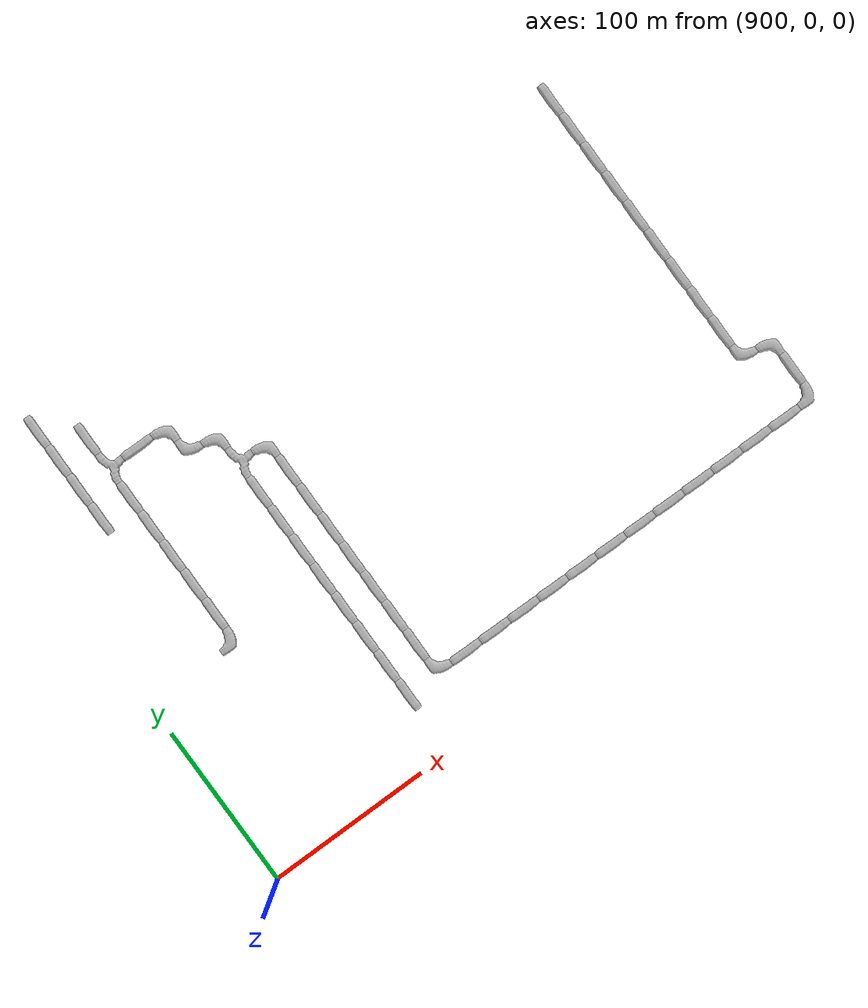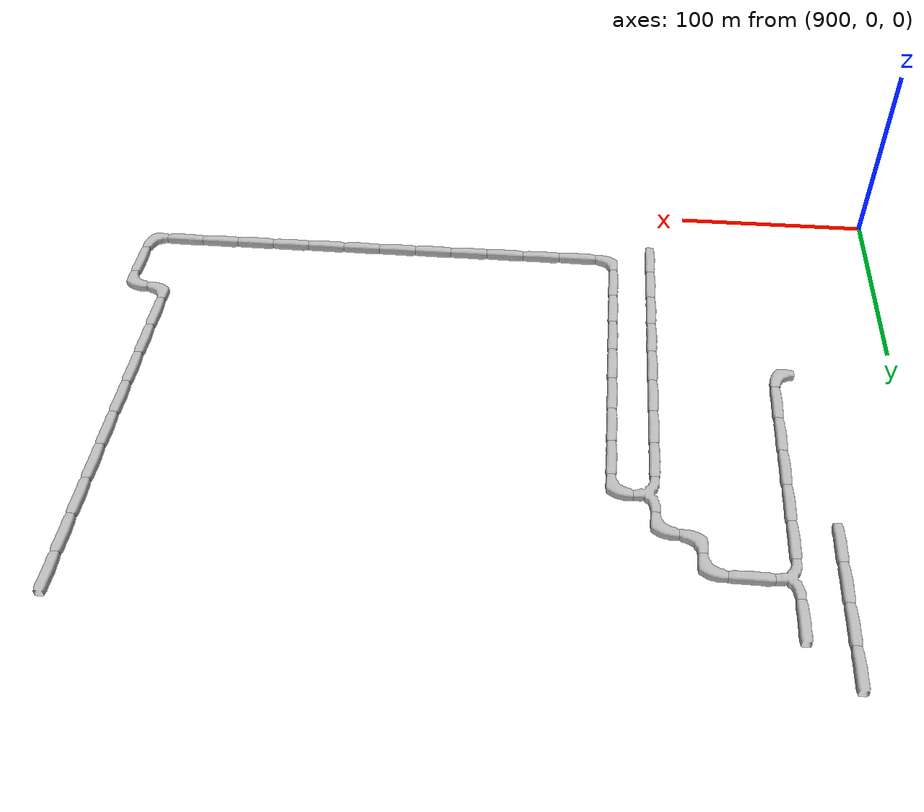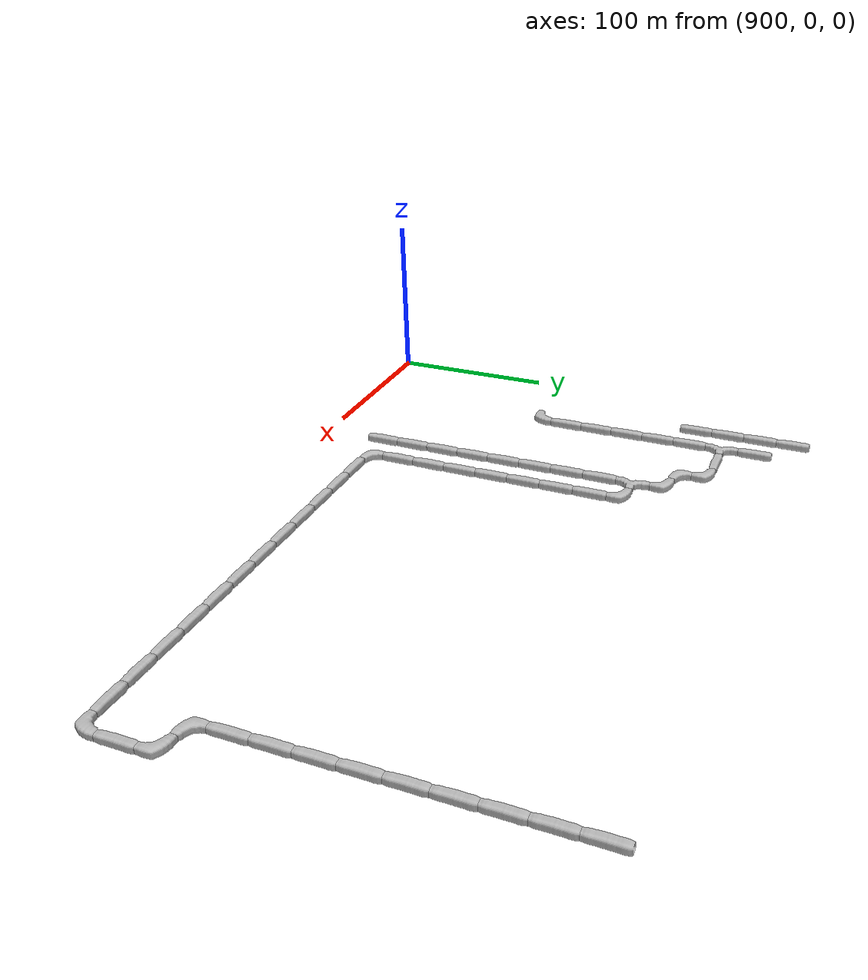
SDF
<sdf version="1.6">
 <world name="cave_32000_2">
  <include>
   <static>true</static>
   <name>cave_48_6</name>
   <pose>960 120 0 0 0 1.5707963267948966</pose>
   <uri>model://cave_L_20m</uri>
  </include>
  <include>
   <static>true</static>
   <name>cave_48_7</name>
   <pose>960 140 0 0 0 0.0</pose>
   <uri>model://cave_straight_20m</uri>
  </include>
  <include>
   <static>true</static>
   <name>cave_48_8</name>
   <pose>960 160 0 0 0 0.0</pose>
   <uri>model://cave_straight_20m</uri>
  </include>
  <include>
   <static>true</static>
   <name>cave_48_9</name>
   <pose>960 180 0 0 0 0.0</pose>
   <uri>model://cave_straight_20m</uri>
  </include>
  <include>
   <static>true</static>
   <name>cave_48_10</name>
   <pose>960 200 0 0 0 0.0</pose>
   <uri>model://cave_straight_20m</uri>
  </include>
  <include>
   <static>true</static>
   <name>cave_48_11</name>
   <pose>960 220 0 0 0 0.0</pose>
   <uri>model://cave_straight_20m</uri>
  </include>
  <include>
   <static>true</static>
   <name>cave_48_12</name>
   <pose>960 240 0 0 0 -1.5707963267948966</pose>
   <uri>model://cave_3way_20m</uri>
  </include>
  <include>
   <static>true</static>
   <name>cave_49_12</name>
   <pose>980 240 0 0 0 1.5707963267948966</pose>
   <uri>model://cave_straight_20m</uri>
  </include>
  <include>
   <static>true</static>
   <name>cave_50_12</name>
   <pose>1000 240 0 0 0 3.141592653589793</pose>
   <uri>model://cave_L_20m</uri>
  </include>
  <include>
   <static>true</static>
   <name>cave_50_11</name>
   <pose>1000 220 0 0 0 0.0</pose>
   <uri>model://cave_L_20m</uri>
  </include>
  <include>
   <static>true</static>
   <name>cave_51_11</name>
   <pose>1020 220 0 0 0 3.141592653589793</pose>
   <uri>model://cave_L_20m</uri>
  </include>
  <include>
   <static>true</static>
   <name>cave_51_10</name>
   <pose>1020 200 0 0 0 -1.5707963267948966</pose>
   <uri>model://cave_3way_20m</uri>
  </include>
  <include>
   <static>true</static>
   <name>cave_52_10</name>
   <pose>1040 200 0 0 0 3.141592653589793</pose>
   <uri>model://cave_L_20m</uri>
  </include>
  <include>
   <static>true</static>
   <name>cave_52_9</name>
   <pose>1040 180 0 0 0 0.0</pose>
   <uri>model://cave_straight_20m</uri>
  </include>
  <include>
   <static>true</static>
   <name>cave_52_8</name>
   <pose>1040 160 0 0 0 0.0</pose>
   <uri>model://cave_straight_20m</uri>
  </include>
  <include>
   <static>true</static>
   <name>cave_52_7</name>
   <pose>1040 140 0 0 0 0.0</pose>
   <uri>model://cave_straight_20m</uri>
  </include>
  <include>
   <static>true</static>
   <name>cave_52_6</name>
   <pose>1040 120 0 0 0 0.0</pose>
   <uri>model://cave_straight_20m</uri>
  </include>
  <include>
   <static>true</static>
   <name>cave_52_5</name>
   <pose>1040 100 0 0 0 0.0</pose>
   <uri>model://cave_straight_20m</uri>
  </include>
  <include>
   <static>true</static>
   <name>cave_52_4</name>
   <pose>1040 80 0 0 0 0.0</pose>
   <uri>model://cave_straight_20m</uri>
  </include>
  <include>
   <static>true</static>
   <name>cave_52_3</name>
   <pose>1040 60 0 0 0 0.0</pose>
   <uri>model://cave_straight_20m</uri>
  </include>
  <include>
   <static>true</static>
   <name>cave_52_2</name>
   <pose>1040 40 0 0 0 0.0</pose>
   <uri>model://cave_L_20m</uri>
  </include>
  <include>
   <static>true</static>
   <name>cave_53_2</name>
   <pose>1060 40 0 0 0 1.5707963267948966</pose>
   <uri>model://cave_straight_20m</uri>
  </include>
  <include>
   <static>true</static>
   <name>cave_54_2</name>
   <pose>1080 40 0 0 0 1.5707963267948966</pose>
   <uri>model://cave_straight_20m</uri>
  </include>
  <include>
   <static>true</static>
   <name>cave_55_2</name>
   <pose>1100 40 0 0 0 1.5707963267948966</pose>
   <uri>model://cave_straight_20m</uri>
  </include>
  <include>
   <static>true</static>
   <name>cave_56_2</name>
   <pose>1120 40 0 0 0 1.5707963267948966</pose>
   <uri>model://cave_straight_20m</uri>
  </include>
  <include>
   <static>true</static>
   <name>cave_57_2</name>
   <pose>1140 40 0 0 0 1.5707963267948966</pose>
   <uri>model://cave_straight_20m</uri>
  </include>
  <include>
   <static>true</static>
   <name>cave_58_2</name>
   <pose>1160 40 0 0 0 1.5707963267948966</pose>
   <uri>model://cave_straight_20m</uri>
  </include>
  <include>
   <static>true</static>
   <name>cave_59_2</name>
   <pose>1180 40 0 0 0 1.5707963267948966</pose>
   <uri>model://cave_straight_20m</uri>
  </include>
  <include>
   <static>true</static>
   <name>cave_60_2</name>
   <pose>1200 40 0 0 0 1.5707963267948966</pose>
   <uri>model://cave_straight_20m</uri>
  </include>
  <include>
   <static>true</static>
   <name>cave_61_2</name>
   <pose>1220 40 0 0 0 1.5707963267948966</pose>
   <uri>model://cave_straight_20m</uri>
  </include>
  <include>
   <static>true</static>
   <name>cave_62_2</name>
   <pose>1240 40 0 0 0 1.5707963267948966</pose>
   <uri>model://cave_straight_20m</uri>
  </include>
  <include>
   <static>true</static>
   <name>cave_63_2</name>
   <pose>1260 40 0 0 0 1.5707963267948966</pose>
   <uri>model://cave_straight_20m</uri>
  </include>
  <include>
   <static>true</static>
   <name>cave_64_2</name>
   <pose>1280 40 0 0 0 1.5707963267948966</pose>
   <uri>model://cave_straight_20m</uri>
  </include>
  <include>
   <static>true</static>
   <name>cave_65_2</name>
   <pose>1300 40 0 0 0 1.5707963267948966</pose>
   <uri>model://cave_L_20m</uri>
  </include>
  <include>
   <static>true</static>
   <name>cave_65_3</name>
   <pose>1300 60 0 0 0 0.0</pose>
   <uri>model://cave_straight_20m</uri>
  </include>
  <include>
   <static>true</static>
   <name>cave_65_4</name>
   <pose>1300 80 0 0 0 3.141592653589793</pose>
   <uri>model://cave_L_20m</uri>
  </include>
  <include>
   <static>true</static>
   <name>cave_64_4</name>
   <pose>1280 80 0 0 0 0.0</pose>
   <uri>model://cave_L_20m</uri>
  </include>
  <include>
   <static>true</static>
   <name>cave_64_5</name>
   <pose>1280 100 0 0 0 0.0</pose>
   <uri>model://cave_straight_20m</uri>
  </include>
  <include>
   <static>true</static>
   <name>cave_64_6</name>
   <pose>1280 120 0 0 0 0.0</pose>
   <uri>model://cave_straight_20m</uri>
  </include>
  <include>
   <static>true</static>
   <name>cave_64_7</name>
   <pose>1280 140 0 0 0 0.0</pose>
   <uri>model://cave_straight_20m</uri>
  </include>
  <include>
   <static>true</static>
   <name>cave_64_8</name>
   <pose>1280 160 0 0 0 0.0</pose>
   <uri>model://cave_straight_20m</uri>
  </include>
  <include>
   <static>true</static>
   <name>cave_64_9</name>
   <pose>1280 180 0 0 0 0.0</pose>
   <uri>model://cave_straight_20m</uri>
  </include>
  <include>
   <static>true</static>
   <name>cave_64_10</name>
   <pose>1280 200 0 0 0 0.0</pose>
   <uri>model://cave_straight_20m</uri>
  </include>
  <include>
   <static>true</static>
   <name>cave_64_11</name>
   <pose>1280 220 0 0 0 0.0</pose>
   <uri>model://cave_straight_20m</uri>
  </include>
  <include>
   <static>true</static>
   <name>cave_64_12</name>
   <pose>1280 240 0 0 0 0.0</pose>
   <uri>model://cave_straight_20m</uri>
  </include>
  <include>
   <static>true</static>
   <name>cave_64_13</name>
   <pose>1280 260 0 0 0 0.0</pose>
   <uri>model://cave_straight_20m</uri>
  </include>
  <include>
   <static>true</static>
   <name>cave_51_9</name>
   <pose>1020 180 0 0 0 0.0</pose>
   <uri>model://cave_straight_20m</uri>
  </include>
  <include>
   <static>true</static>
   <name>cave_51_8</name>
   <pose>1020 160 0 0 0 0.0</pose>
   <uri>model://cave_straight_20m</uri>
  </include>
  <include>
   <static>true</static>
   <name>cave_51_7</name>
   <pose>1020 140 0 0 0 0.0</pose>
   <uri>model://cave_straight_20m</uri>
  </include>
  <include>
   <static>true</static>
   <name>cave_51_6</name>
   <pose>1020 120 0 0 0 0.0</pose>
   <uri>model://cave_straight_20m</uri>
  </include>
  <include>
   <static>true</static>
   <name>cave_51_5</name>
   <pose>1020 100 0 0 0 0.0</pose>
   <uri>model://cave_straight_20m</uri>
  </include>
  <include>
   <static>true</static>
   <name>cave_51_4</name>
   <pose>1020 80 0 0 0 0.0</pose>
   <uri>model://cave_straight_20m</uri>
  </include>
  <include>
   <static>true</static>
   <name>cave_51_3</name>
   <pose>1020 60 0 0 0 0.0</pose>
   <uri>model://cave_straight_20m</uri>
  </include>
  <include>
   <static>true</static>
   <name>cave_51_2</name>
   <pose>1020 40 0 0 0 0.0</pose>
   <uri>model://cave_straight_20m</uri>
  </include>
  <include>
   <static>true</static>
   <name>cave_48_13</name>
   <pose>960 260 0 0 0 0.0</pose>
   <uri>model://cave_straight_20m</uri>
  </include>
  <include>
   <static>true</static>
   <name>cave_47_11</name>
   <pose>940 220 0 0 0 0.0</pose>
   <uri>model://cave_straight_20m</uri>
  </include>
  <include>
   <static>true</static>
   <name>cave_47_12</name>
   <pose>940 240 0 0 0 0.0</pose>
   <uri>model://cave_straight_20m</uri>
  </include>
  <include>
   <static>true</static>
   <name>cave_47_13</name>
   <pose>940 260 0 0 0 0.0</pose>
   <uri>model://cave_straight_20m</uri>
  </include>
  <include>
   <static>true</static>
   <name>cave_47_14</name>
   <pose>940 280 0 0 0 0.0</pose>
   <uri>model://cave_straight_20m</uri>
  </include>
 </world>
</sdf>
